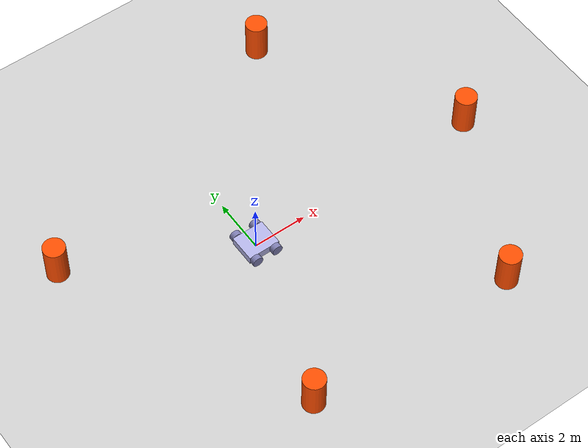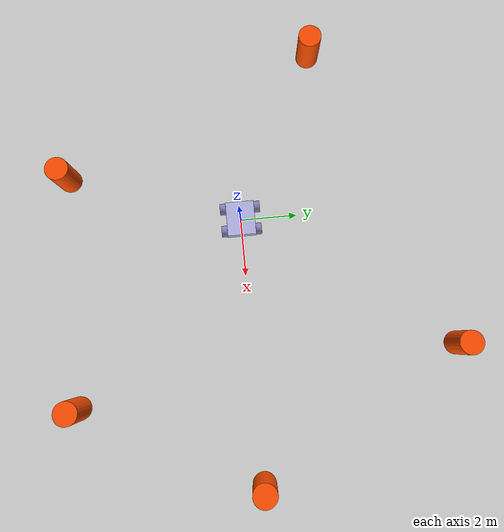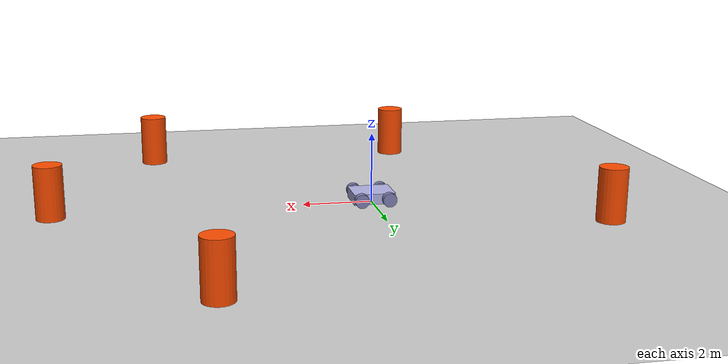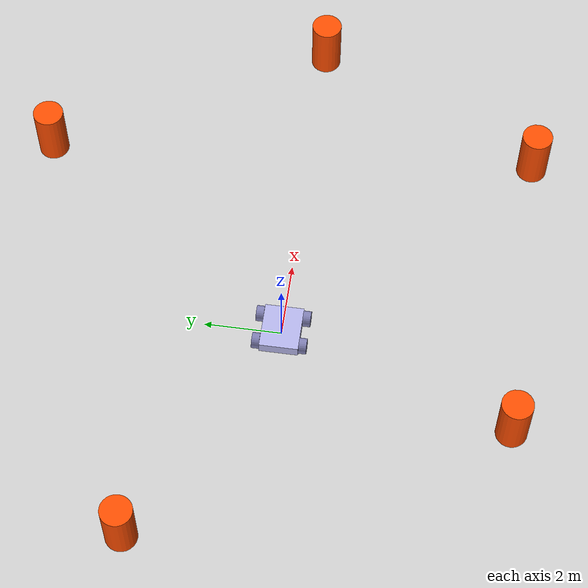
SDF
<?xml version="1.0" ?>
<sdf version="1.10">
    <world name="projeto_final_world">
        <physics name="1ms" type="ignored">
            <max_step_size>0.001</max_step_size>
            <real_time_factor>1.0</real_time_factor>
        </physics>
        <plugin
            filename="gz-sim-physics-system"
            name="gz::sim::systems::Physics">
        </plugin>
        <plugin
            filename="gz-sim-user-commands-system"
            name="gz::sim::systems::UserCommands">
        </plugin>
        <plugin
            filename="gz-sim-scene-broadcaster-system"
            name="gz::sim::systems::SceneBroadcaster">
        </plugin>

        <light type="directional" name="sun">
            <cast_shadows>true</cast_shadows>
            <pose>0 0 10 0 0 0</pose>
            <diffuse>0.8 0.8 0.8 1</diffuse>
            <specular>0.2 0.2 0.2 1</specular>
            <attenuation>
                <range>1000</range>
                <constant>0.9</constant>
                <linear>0.01</linear>
                <quadratic>0.001</quadratic>
            </attenuation>
            <direction>-0.5 0.1 -0.9</direction>
        </light>

        <model name="ground_plane">
            <static>true</static>
            <link name="link">
                <collision name="collision">
                <geometry>
                    <plane>
                    <normal>0 0 1</normal>
                    </plane>
                </geometry>
                </collision>
                <visual name="visual">
                <geometry>
                    <plane>
                    <normal>0 0 1</normal>
                    <size>100 100</size>
                    </plane>
                </geometry>
                <material>
                    <ambient>0.8 0.8 0.8 1</ambient>
                    <diffuse>0.8 0.8 0.8 1</diffuse>
                    <specular>0.8 0.8 0.8 1</specular>
                </material>
                </visual>
            </link>
        </model>
        <model name="alvo1">
            <self_collide>true</self_collide>
            <pose>5 7 0.5 0 0 0</pose>
            <link name='alvo'>
                <pose>0 0 0 0 0 0</pose>
                <inertial>
                    <mass>1</mass>
                    <inertia>
                        <ixx>0.373333</ixx>
                        <ixy>0</ixy>
                        <ixz>0</ixz>
                        <iyy>0.373333</iyy>
                        <iyz>0</iyz>
                        <izz>0.08</izz>
                    </inertia>
                </inertial>
                <visual name='visual'>
                    <geometry>
                        <cylinder>
                            <radius>0.4</radius>
                            <length>2</length>
                        </cylinder>
                    </geometry>
                    <material>
                        <ambient>1 0.3 0 1</ambient>
                        <diffuse>1 0.3 0 1</diffuse>
                        <specular>1 0.3 0 1</specular>
                    </material>
                </visual>
                <collision name='collision'>
                    <geometry>
                        <cylinder>
                            <radius>0.4</radius>
                            <length>1</length>
                        </cylinder>
                    </geometry>
                </collision>
            </link>
            <plugin
                filename="gz-sim-odometry-publisher-system"
                name="gz::sim::systems::OdometryPublisher">
                <odom_frame>world/odom</odom_frame>
                <robot_base_frame>alvo1</robot_base_frame>
                <odom_publish_frequency>2</odom_publish_frequency>
                <odom_topic>/alvo1/odometry</odom_topic>
            </plugin>
        </model>
        <model name="alvo2">
            <self_collide>true</self_collide>
            <pose>6 -6 0.5 0 0 0</pose>
            <link name='alvo'>
                <pose>0 0 0 0 0 0</pose>
                <inertial>
                    <mass>1</mass>
                    <inertia>
                        <ixx>0.373333</ixx>
                        <ixy>0</ixy>
                        <ixz>0</ixz>
                        <iyy>0.373333</iyy>
                        <iyz>0</iyz>
                        <izz>0.08</izz>
                    </inertia>
                </inertial>
                <visual name='visual'>
                    <geometry>
                        <cylinder>
                            <radius>0.4</radius>
                            <length>2</length>
                        </cylinder>
                    </geometry>
                    <material>
                        <ambient>1 0.3 0 1</ambient>
                        <diffuse>1 0.3 0 1</diffuse>
                        <specular>1 0.3 0 1</specular>
                    </material>
                </visual>
                <collision name='collision'>
                    <geometry>
                        <cylinder>
                            <radius>0.4</radius>
                            <length>1</length>
                        </cylinder>
                    </geometry>
                </collision>
            </link>
            <plugin
                filename="gz-sim-odometry-publisher-system"
                name="gz::sim::systems::OdometryPublisher">
                <odom_frame>world/odom</odom_frame>
                <robot_base_frame>alvo2</robot_base_frame>
                <odom_publish_frequency>2</odom_publish_frequency>
                <odom_topic>/alvo2/odometry</odom_topic>
            </plugin>
        </model>
        <model name="alvo3">
            <self_collide>true</self_collide>
            <pose>9 0 0.5 0 0 0</pose>
            <link name='alvo'>
                <pose>0 0 0 0 0 0</pose>
                <inertial>
                    <mass>1</mass>
                    <inertia>
                        <ixx>0.373333</ixx>
                        <ixy>0</ixy>
                        <ixz>0</ixz>
                        <iyy>0.373333</iyy>
                        <iyz>0</iyz>
                        <izz>0.08</izz>
                    </inertia>
                </inertial>
                <visual name='visual'>
                    <geometry>
                        <cylinder>
                            <radius>0.4</radius>
                            <length>2</length>
                        </cylinder>
                    </geometry>
                    <material>
                        <ambient>1 0.3 0 1</ambient>
                        <diffuse>1 0.3 0 1</diffuse>
                        <specular>1 0.3 0 1</specular>
                    </material>
                </visual>
                <collision name='collision'>
                    <geometry>
                        <cylinder>
                            <radius>0.4</radius>
                            <length>1</length>
                        </cylinder>
                    </geometry>
                </collision>
            </link>
            <plugin
                filename="gz-sim-odometry-publisher-system"
                name="gz::sim::systems::OdometryPublisher">
                <odom_frame>world/odom</odom_frame>
                <robot_base_frame>alvo3</robot_base_frame>
                <odom_publish_frequency>2</odom_publish_frequency>
                <odom_topic>/alvo3/odometry</odom_topic>
            </plugin>
        </model>
        <model name="alvo4">
            <self_collide>true</self_collide>
            <pose>-6 3 0.5 0 0 0</pose>
            <link name='alvo'>
                <pose>0 0 0 0 0 0</pose>
                <inertial>
                    <mass>1</mass>
                    <inertia>
                        <ixx>0.373333</ixx>
                        <ixy>0</ixy>
                        <ixz>0</ixz>
                        <iyy>0.373333</iyy>
                        <iyz>0</iyz>
                        <izz>0.08</izz>
                    </inertia>
                </inertial>
                <visual name='visual'>
                    <geometry>
                        <cylinder>
                            <radius>0.4</radius>
                            <length>2</length>
                        </cylinder>
                    </geometry>
                    <material>
                        <ambient>1 0.3 0 1</ambient>
                        <diffuse>1 0.3 0 1</diffuse>
                        <specular>1 0.3 0 1</specular>
                    </material>
                </visual>
                <collision name='collision'>
                    <geometry>
                        <cylinder>
                            <radius>0.4</radius>
                            <length>1</length>
                        </cylinder>
                    </geometry>
                </collision>
            </link>
            <plugin
                filename="gz-sim-odometry-publisher-system"
                name="gz::sim::systems::OdometryPublisher">
                <odom_frame>world/odom</odom_frame>
                <robot_base_frame>alvo4</robot_base_frame>
                <odom_publish_frequency>2</odom_publish_frequency>
                <odom_topic>/alvo4/odometry</odom_topic>
            </plugin>
        </model>
        <model name="alvo5">
            <self_collide>true</self_collide>
            <pose>-2 -6 0.5 0 0 0</pose>
            <link name='alvo'>
                <pose>0 0 0 0 0 0</pose>
                <inertial>
                    <mass>1</mass>
                    <inertia>
                        <ixx>0.373333</ixx>
                        <ixy>0</ixy>
                        <ixz>0</ixz>
                        <iyy>0.373333</iyy>
                        <iyz>0</iyz>
                        <izz>0.08</izz>
                    </inertia>
                </inertial>
                <visual name='visual'>
                    <geometry>
                        <cylinder>
                            <radius>0.4</radius>
                            <length>2</length>
                        </cylinder>
                    </geometry>
                    <material>
                        <ambient>1 0.3 0 1</ambient>
                        <diffuse>1 0.3 0 1</diffuse>
                        <specular>1 0.3 0 1</specular>
                    </material>
                </visual>
                <collision name='collision'>
                    <geometry>
                        <cylinder>
                            <radius>0.4</radius>
                            <length>1</length>
                        </cylinder>
                    </geometry>
                </collision>
            </link>
            <plugin
                filename="gz-sim-odometry-publisher-system"
                name="gz::sim::systems::OdometryPublisher">
                <odom_frame>world/odom</odom_frame>
                <robot_base_frame>alvo5</robot_base_frame>
                <odom_publish_frequency>2</odom_publish_frequency>
                <odom_topic>/alvo5/odometry</odom_topic>
            </plugin>
        </model>
        <model name="carrinho">
            <self_collide>true</self_collide>
            <pose>0 0 0 0 0 0</pose>
            <link name='chassis'>
                <pose>0 0 0.2 0 0 0</pose>
                <inertial>
                    <mass>1.14395</mass>
                    <inertia>
                        <ixx>0.103909</ixx>
                        <ixy>0</ixy>
                        <ixz>0</ixz>
                        <iyy>0.145854</iyy>
                        <iyz>0</iyz>
                        <izz>0.232603</izz>
                    </inertia>
                </inertial>
                <visual name='visual'>
                    <geometry>
                        <box>
                            <size>1.2 1.0 0.3</size>
                        </box>
                    </geometry>

                    <material>
                        <ambient>0.7 0.7 0.9 1</ambient>
                        <diffuse>0.7 0.7 0.9 1</diffuse>
                        <specular>0.7 0.7 0.9 1</specular>
                    </material>
                </visual>
                <collision name='collision'>
                    <geometry>
                        <box>
                            <size>1.2 1.0 0.3</size>
                        </box>
                    </geometry>
                </collision>
            </link>
            <link name='left_wheel'>
                <pose relative_to="chassis">-0.4 0.6 0 -1.5707 0 0</pose>
                <inertial>
                    <mass>1</mass>
                    <inertia>
                        <ixx>0.013333</ixx>
                        <ixy>0</ixy>
                        <ixz>0</ixz>
                        <iyy>0.013333</iyy>
                        <iyz>0</iyz>
                        <izz>0.02</izz>
                    </inertia>
                </inertial>
                <visual name='visual'>
                    <geometry>
                        <cylinder>
                            <radius>0.2</radius>
                            <length>0.2</length>
                        </cylinder>
                    </geometry>
                    <material>
                        <ambient>0.5 0.5 0.7 1</ambient>
                        <diffuse>0.5 0.5 0.7 1</diffuse>
                        <specular>0.5 0.5 0.7 1</specular>
                    </material>
                </visual>
                <collision name='collision'>
                    <geometry>
                        <cylinder>
                            <radius>0.2</radius>
                            <length>0.2</length>
                        </cylinder>
                    </geometry>
                </collision>
            </link>
            <link name='right_wheel'>
                <pose relative_to="chassis">-0.4 -0.6 0 -1.5707 0 0</pose>
                <inertial>
                    <mass>1</mass>
                    <inertia>
                        <ixx>0.013333</ixx>
                        <ixy>0</ixy>
                        <ixz>0</ixz>
                        <iyy>0.013333</iyy>
                        <iyz>0</iyz>
                        <izz>0.02</izz>
                    </inertia>
                </inertial>
                <visual name='visual'>
                    <geometry>
                        <cylinder>
                            <radius>0.2</radius>
                            <length>0.2</length>
                        </cylinder>
                    </geometry>
                    <material>
                        <ambient>0.5 0.5 0.7 1</ambient>
                        <diffuse>0.5 0.5 0.7 1</diffuse>
                        <specular>0.5 0.5 0.7 1</specular>
                    </material>
                </visual>
                <collision name='collision'>
                    <geometry>
                        <cylinder>
                            <radius>0.2</radius>
                            <length>0.2</length>
                        </cylinder>
                    </geometry>
                </collision>
            </link>

            <link name='back_left_wheel'>
                <pose relative_to="chassis">0.4 0.6 0 -1.5707 0 0</pose>
                <inertial>
                    <mass>1</mass>
                    <inertia>
                        <ixx>0.013333</ixx>
                        <ixy>0</ixy>
                        <ixz>0</ixz>
                        <iyy>0.013333</iyy>
                        <iyz>0</iyz>
                        <izz>0.02</izz>
                    </inertia>
                </inertial>
                <visual name='visual'>
                    <geometry>
                        <cylinder>
                            <radius>0.2</radius>
                            <length>0.2</length>
                        </cylinder>
                    </geometry>
                    <material>
                        <ambient>0.5 0.5 0.7 1</ambient>
                        <diffuse>0.5 0.5 0.7 1</diffuse>
                        <specular>0.5 0.5 0.7 1</specular>
                    </material>
                </visual>
                <collision name='collision'>
                    <geometry>
                        <cylinder>
                            <radius>0.2</radius>
                            <length>0.2</length>
                        </cylinder>
                    </geometry>
                </collision>
            </link>

            <link name='back_right_wheel'>
                <pose relative_to="chassis">0.4 -0.6 0 -1.5707 0 0</pose> <!--angles are in radian-->
                <inertial>
                    <mass>1</mass>
                    <inertia>
                        <ixx>0.013333</ixx>
                        <ixy>0</ixy>
                        <ixz>0</ixz>
                        <iyy>0.013333</iyy>
                        <iyz>0</iyz>
                        <izz>0.02</izz>
                    </inertia>
                </inertial>
                <visual name='visual'>
                    <geometry>
                        <cylinder>
                            <radius>0.2</radius>
                            <length>0.2</length>
                        </cylinder>
                    </geometry>
                    <material>
                        <ambient>0.5 0.5 0.7 1</ambient>
                        <diffuse>0.5 0.5 0.7 1</diffuse>
                        <specular>0.5 0.5 0.7 1</specular>
                    </material>
                </visual>
                <collision name='collision'>
                    <geometry>
                        <cylinder>
                            <radius>0.2</radius>
                            <length>0.2</length>
                        </cylinder>
                    </geometry>
                </collision>
            </link>

            <joint name='left_wheel_joint' type='revolute'>
                <parent>chassis</parent>
                <child>left_wheel</child>
                <axis>
                    <xyz expressed_in="chassis">0 1 0</xyz> <!--can be defined as any frame or even arbitrary frames-->
                    <limit>
                        <lower>-1.79769e+308</lower>    <!--negative infinity-->
                        <upper>1.79769e+308</upper>     <!--positive infinity-->
                    </limit>
                </axis>
            </joint>

            <joint name='right_wheel_joint' type='revolute'>
                <parent>chassis</parent>
                <child>right_wheel</child>
                <axis>
                    <xyz expressed_in="chassis">0 1 0</xyz>
                    <limit>
                        <lower>-1.79769e+308</lower>    <!--negative infinity-->
                        <upper>1.79769e+308</upper>     <!--positive infinity-->
                    </limit>
                </axis>
            </joint>

            <joint name='back_left_wheel_joint' type='revolute'>
                <pose relative_to='back_left_wheel'/>
                <parent>chassis</parent>
                <child>back_left_wheel</child>
                <axis>
                    <xyz expressed_in="chassis">0 1 0</xyz> <!--can be defined as any frame or even arbitrary frames-->
                    <limit>
                        <lower>-1.79769e+308</lower>    <!--negative infinity-->
                        <upper>1.79769e+308</upper>     <!--positive infinity-->
                    </limit>
                </axis>
            </joint>

            <joint name='back_right_wheel_joint' type='revolute'>
                <pose relative_to='back_right_wheel'/>
                <parent>chassis</parent>
                <child>back_right_wheel</child>
                <axis>
                    <xyz expressed_in="chassis">0 1 0</xyz>
                    <limit>
                        <lower>-1.79769e+308</lower>    <!--negative infinity-->
                        <upper>1.79769e+308</upper>     <!--positive infinity-->
                    </limit>
                </axis>
            </joint>

            <plugin
                filename="ignition-gazebo-diff-drive-system"
                name="ignition::gazebo::systems::DiffDrive">
                <left_joint>left_wheel_joint</left_joint>
                <right_joint>right_wheel_joint</right_joint>
                <wheel_separation>1.25</wheel_separation>
                <wheel_radius>0.3</wheel_radius>
                <odom_publish_frequency>1</odom_publish_frequency>
                <max_linear_acceleration>30</max_linear_acceleration>
                <min_linear_acceleration>-1</min_linear_acceleration>
                <max_angular_acceleration>30</max_angular_acceleration>
                <min_angular_acceleration>-2</min_angular_acceleration>
                <max_linear_velocity>30.5</max_linear_velocity>
                <min_linear_velocity>-0.5</min_linear_velocity>
                <max_angular_velocity>30</max_angular_velocity>
                <min_angular_velocity>-1</min_angular_velocity>
            </plugin>

            <plugin
        filename="gz-sim-velocity-control-system"
        name="gz::sim::systems::VelocityControl">
      </plugin>
             <plugin
                filename="gz-sim-velocity-control-system"
                name="gz::sim::systems::VelocityControl">
                <topic>/cmd_vel</topic>
                <initial_linear>0 0 0</initial_linear>
                <initial_angular>0 0 0</initial_angular>
            </plugin>

            <plugin
                filename="gz-sim-pose-publisher-system"
                name="gz::sim::systems::PosePublisher">
                <publish_link_pose>true</publish_link_pose>
                <use_pose_vector_msg>true</use_pose_vector_msg>
                <static_publisher>true</static_publisher>
                <static_update_frequency>1</static_update_frequency>
            </plugin>
            <plugin
                filename="gz-sim-odometry-publisher-system"
                name="gz::sim::systems::OdometryPublisher">
                <odom_frame>world/odom</odom_frame>
                <robot_base_frame>carrinho</robot_base_frame>
                <odom_publish_frequency>2</odom_publish_frequency>
                <odom_topic>/carrinho/odometry</odom_topic>
            </plugin>
        </model>

    </world>
</sdf>
